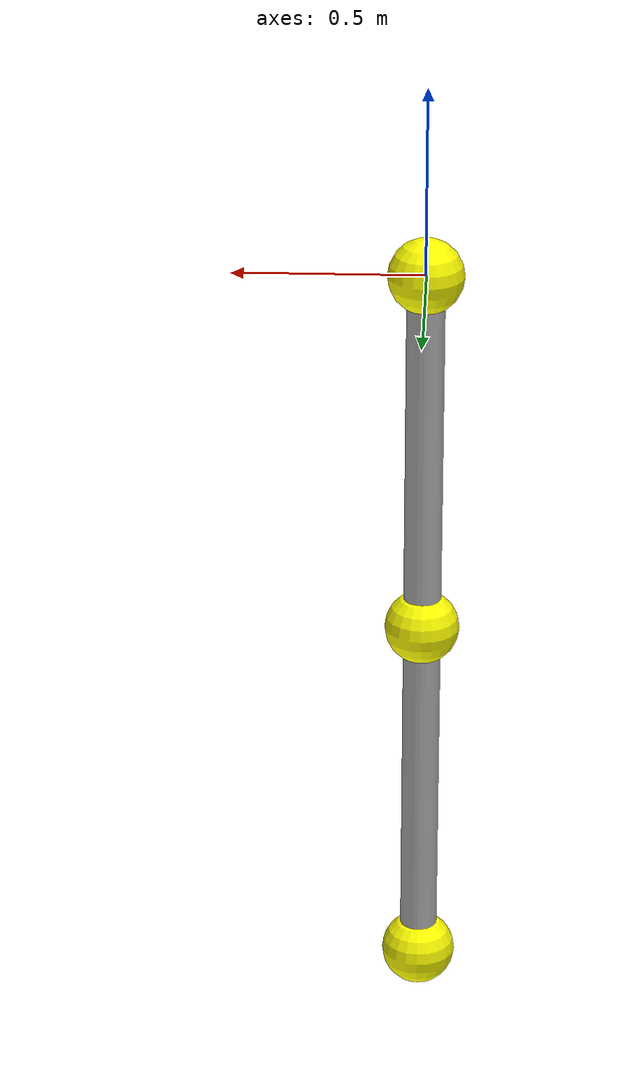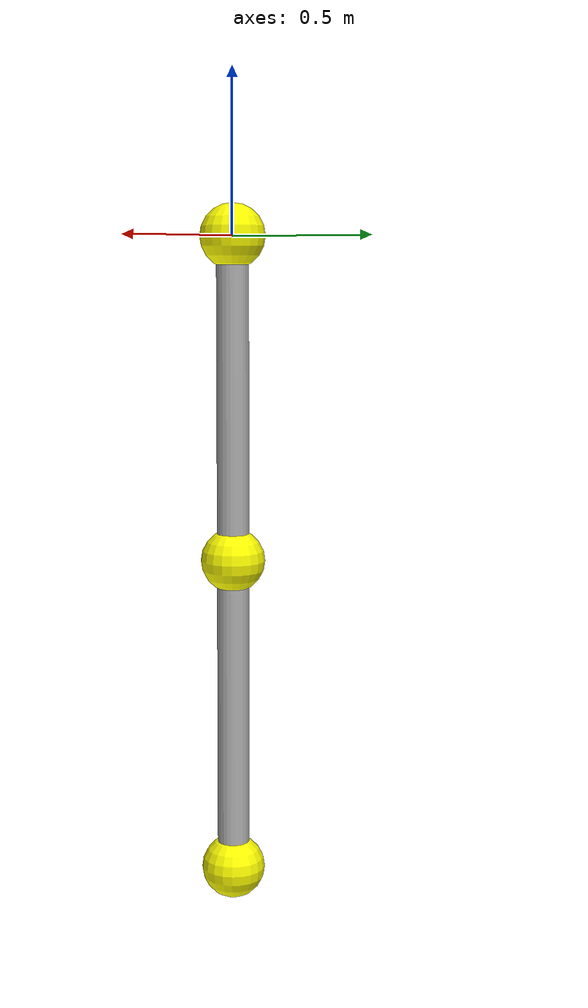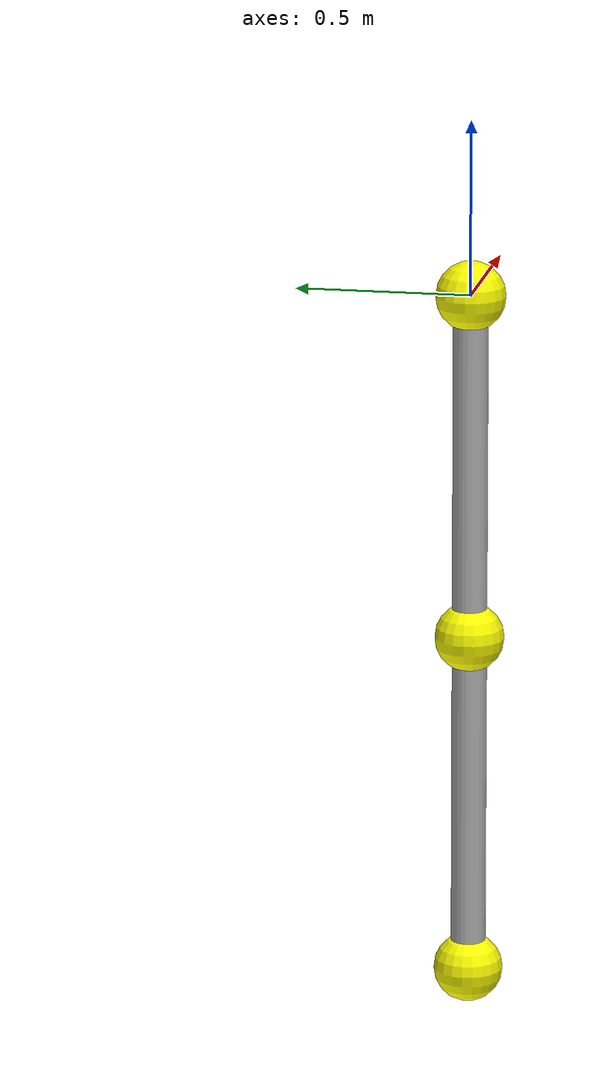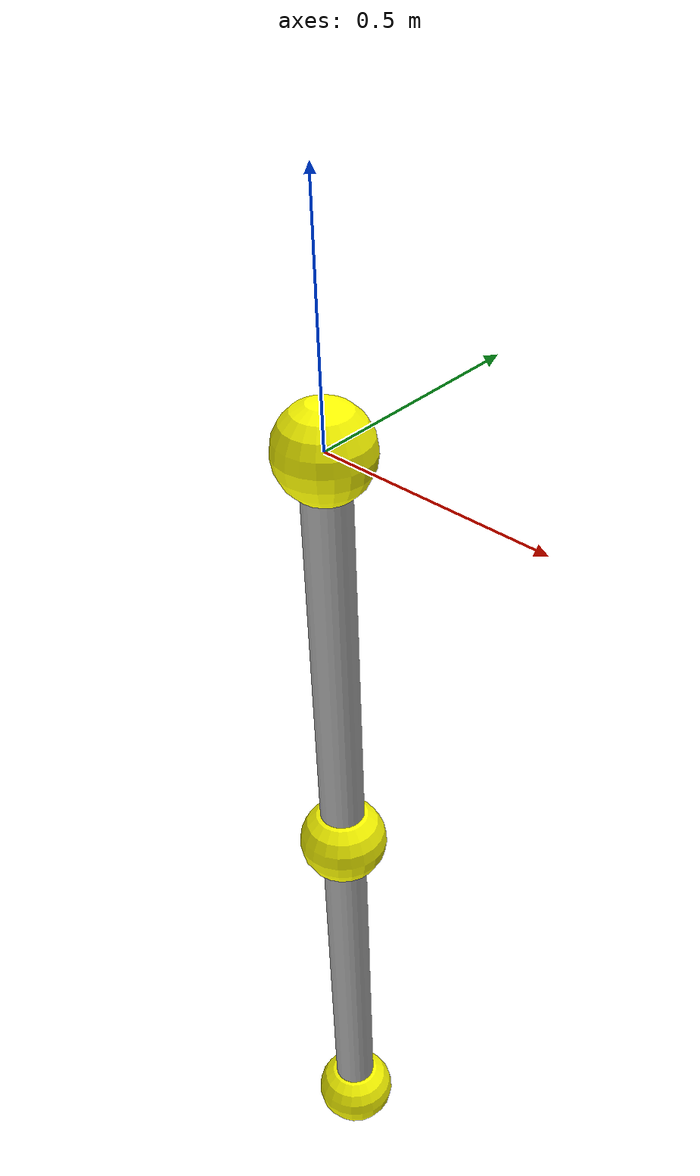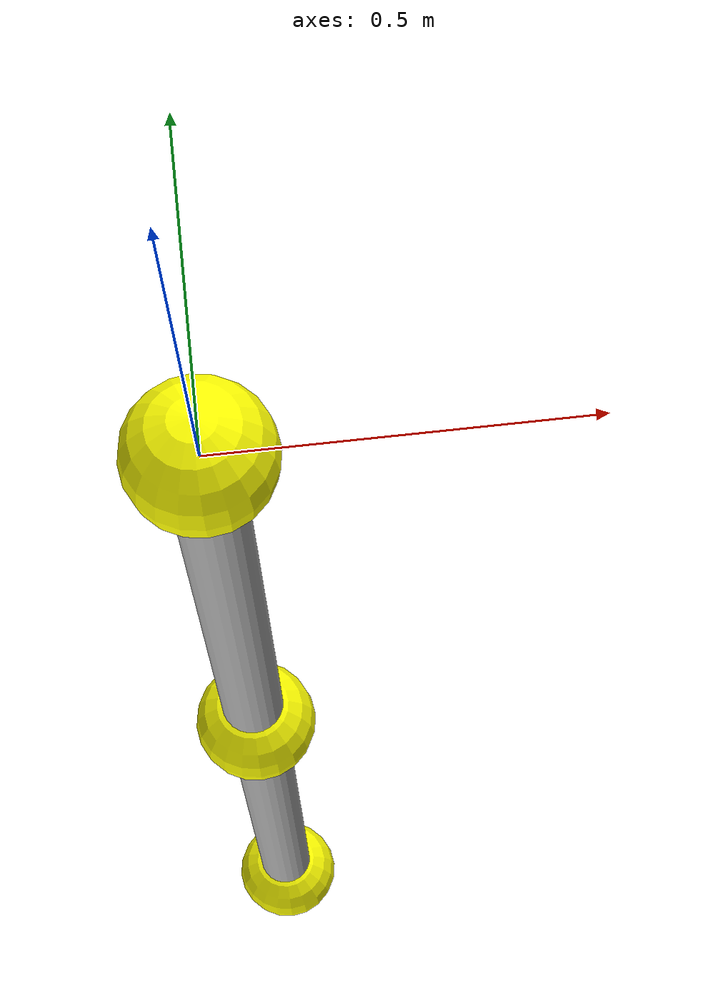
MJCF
<mujoco model="2D_UpperLimb">

  <compiler inertiafromgeom = "auto"
            angle 					= "radian" />

						<option  timestep  = '0.0001'
										iterations = '50'
										    solver = 'PGS'
										integrator = 'Euler'
										   gravity = "0 0 -9.81"
									   collision = 'all' >

							<flag energy = 'enable'/>

						</option>

  <asset>
    <!-- Texture of the surrounding sky box
         setting everything as white-ish color for better visualization -->
     <texture type 		= "skybox"
              builtin = "flat"
              rgb1 		= "1 1 1"
              rgb2		= "1 1 1"
              width 	= "100"
              height 	= "100"/>

     <!-- Joint and Limb Color -->
     <material name = "JointColor" rgba = "1.0 1.0 0.0 1" />
     <material name = "LimbColor"  rgba = "0.7 0.7 0.7 1" />
  </asset>

  <worldbody>

        <body name='cameramover' mocap='true' pos='0 0 0'>
						<camera name='mycamera' pos='0.0 2.0 2.0' euler='1.5707 0 0'/>
      	</body>

    <!-- ===============  MODEL STARTS  =============== -->

    <!-- ============ UPPER ARM START =============== -->
		<body name='upperArm' pos='0 0 0' euler='0 0 0'>
			<inertial pos='0 0 -0.5'     mass='1'         diaginertia='1 1 1'/>
			<geom name='shoulderGEOM' type='sphere' pos='0 0 0' material='JointColor' size='0.1' mass='0'/>
			<joint name='shoulder' ref='0' type='hinge' stiffness='0' pos='0 0 0' axis='0 -1 0' />
			<geom type='cylinder' fromto='0 0 0 0 0 -1' material='LimbColor' mass='0' size='0.05'/>
			<site name='upperArmCOM' pos='0 0 -0.5' />
		<!-- ============ UPPER ARM END   =============== -->

      <!-- ============ FORE ARM START =============== -->
			<body name='foreArm' pos='0 0 -1' euler='0 0 0'>
				<inertial pos='0 0 -0.5' mass='1'             diaginertia='1 1 1'/>
				<geom name='elbowGEOM' type='sphere' pos='0 0 0' material='JointColor' size='0.1' mass='0'/>
				<joint name='elbow' ref='0' type='hinge' stiffness='0' pos='0 0 0' axis='0 -1 0'/>
				<geom type='cylinder' fromto='0 0 0 0 0 -1' material='LimbColor' mass='0' size='0.05'/>
				<geom name='EEGEOM' type='sphere' pos='0 0 -1' material='JointColor' size='0.1' mass='0'/>
				<site name='foreArmCOM' pos='0 0 -0.5' />
			</body>
			<!-- ============ FORE ARM END   =============== -->

	</body>

  </worldbody>

	<!-- This xml model file don't use the actuator, since it simply runs to the exact joint position -->
	<actuator>

		<motor joint = 'shoulder' name = 'shoulderTorqueMotor'  forcelimited = 'false'/>
		<motor joint = 'elbow'    name =    'elbowTorqueMotor'  forcelimited = 'false'/>

  </actuator>

</mujoco>
